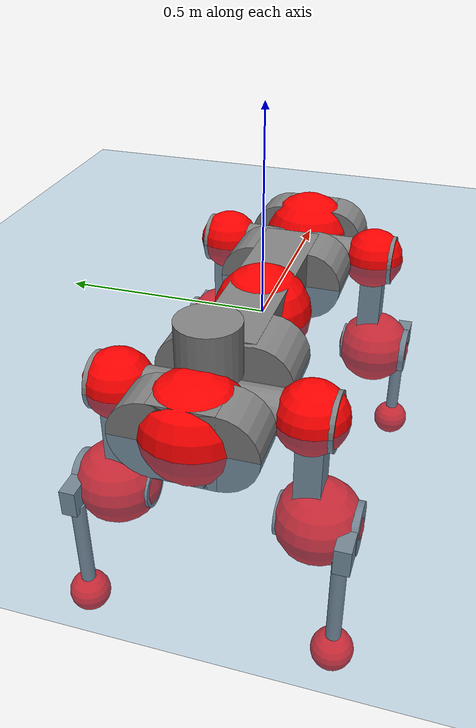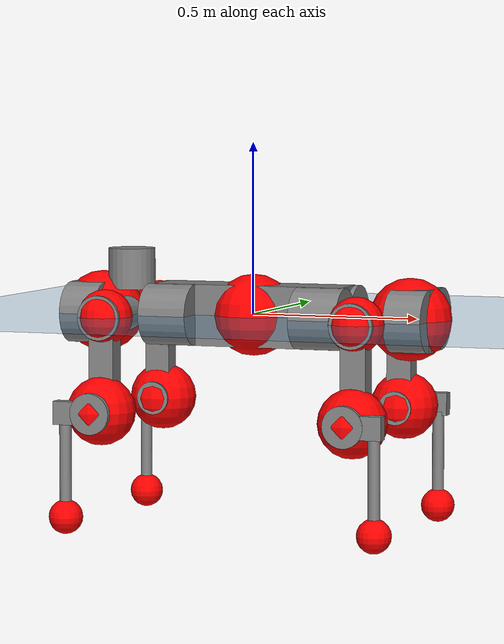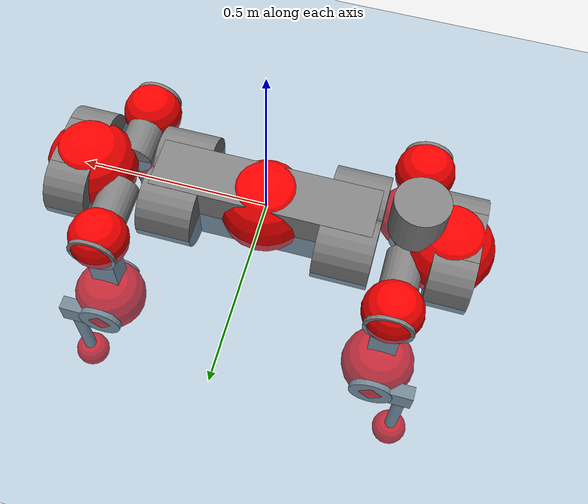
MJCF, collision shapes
<mujoco model="anymal_c">
  <compiler angle="radian" assetdir="assets" balanceinertia="true" inertiafromgeom="false"/>

  <option timestep="0.005" density="1.2" viscosity="2e-05"/>

  <size nkey="1"/>

  <visual>
    <quality shadowsize="8192"/>
    <map shadowclip="0.5"/>
  </visual>

  <default>
    <default class="/">
      <material specular="0" shininess="0.25"/>
      <geom contype="0" conaffinity="0" group="1" solref="-1000 -80"/>
      <site size="0.01 0.005 0.005" group="5"/>
      <general forcelimited="true" forcerange="-80 80" biastype="affine" gainprm="80" biasprm="0 -80 -2"/>
      <default class="anymal_c">
        <joint armature="0.01" damping="0.01" frictionloss="0.1"/>
        <default class="visual">
          <geom type="mesh" group="2"/>
          <default class="visual_zflip"/>
        </default>
        <default class="collision">
          <geom type="cylinder" group="3"/>
          <default class="foot">
            <geom size="0.03 0 0" type="sphere" condim="6" priority="1" friction="0.8 0.02 0.01" solimp="0.015 1 0.03"/>
          </default>
        </default>
      </default>
      <default class="reward_collision_sphere">
        <geom group="5" rgba="1 0 0 1"/>
      </default>
    </default>
  </default>

  <asset>
    <texture type="skybox" colorspace="auto" name="//unnamed_texture_0" builtin="gradient" rgb1="0.95 0.95 0.95" rgb2="0.95 0.95 0.95" width="100" height="600"/>
    <texture type="2d" colorspace="auto" name="texplane" builtin="checker" rgb1="0.345 0.575 0.748" rgb2="0.345 0.575 0.748" markrgb="1 1 1" width="512" height="512"/>
    <texture type="2d" colorspace="linear" name="base" file="base.png"/>
    <texture type="2d" colorspace="linear" name="top_shell" file="top_shell.png"/>
    <texture type="2d" colorspace="linear" name="bottom_shell" file="bottom_shell.png"/>
    <texture type="2d" colorspace="linear" name="remote" file="remote.png"/>
    <texture type="2d" colorspace="linear" name="hatch" file="hatch.png"/>
    <texture type="2d" colorspace="linear" name="handle" file="handle.png"/>
    <texture type="2d" colorspace="linear" name="face" file="face.png"/>
    <texture type="2d" colorspace="linear" name="battery" file="battery.png"/>
    <texture type="2d" colorspace="linear" name="lidar_cage" file="lidar_cage.png"/>
    <texture type="2d" colorspace="linear" name="depth_camera" file="depth_camera.png"/>
    <texture type="2d" colorspace="linear" name="wide_angle_camera" file="wide_angle_camera.png"/>
    <texture type="2d" colorspace="linear" name="lidar" file="lidar.png"/>
    <texture type="2d" colorspace="linear" name="drive" file="drive.png"/>
    <texture type="2d" colorspace="linear" name="hip_l" file="hip_l.png"/>
    <texture type="2d" colorspace="linear" name="shank_l" file="shank_l.png"/>
    <texture type="2d" colorspace="linear" name="foot" file="foot.png"/>
    <texture type="2d" colorspace="linear" name="thigh" file="thigh.png"/>
    <texture type="2d" colorspace="linear" name="shank_r" file="shank_r.png"/>
    <texture type="2d" colorspace="linear" name="hip_r" file="hip_r.png"/>
    <material name="MatPlane" class="/" texture="texplane" texuniform="true" texrepeat="2 2" specular="0.9" shininess="0.5"/>
    <material name="black_plastic" class="/" rgba="0.007 0.007 0.007 1"/>
    <material name="green" class="/" rgba="0.052 0.178 0.033 1"/>
    <material name="red" class="/" rgba="0.178 0.006 0.005 1"/>
    <material name="yellow" class="/" rgba="0.178 0.119 0.006 1"/>
    <material name="lwl" class="/" rgba="0.8 0.8 0.8 1"/>
    <material name="base" class="/" texture="base"/>
    <material name="top_shell" class="/" texture="top_shell"/>
    <material name="bottom_shell" class="/" texture="bottom_shell"/>
    <material name="hip_l" class="/" texture="hip_l"/>
    <material name="thigh" class="/" texture="thigh"/>
    <material name="shank_l" class="/" texture="shank_l"/>
    <material name="foot" class="/" texture="foot"/>
    <material name="hip_r" class="/" texture="hip_r"/>
    <material name="shank" class="/" texture="shank_r"/>
    <material name="hatch" class="/" texture="hatch"/>
    <material name="remote" class="/" texture="remote"/>
    <material name="handle" class="/" texture="handle"/>
    <material name="face" class="/" texture="face"/>
    <material name="depth_camera" class="/" texture="depth_camera"/>
    <material name="wide_angle_camera" class="/" texture="wide_angle_camera"/>
    <material name="battery" class="/" texture="battery"/>
    <material name="lidar_cage" class="/" texture="lidar_cage"/>
    <material name="lidar" class="/" texture="lidar"/>
    <material name="drive" class="/" texture="drive"/>
    <mesh name="base_0" class="/" file="base_0.obj"/>
    <mesh name="base_1" class="/" file="base_1.obj"/>
    <mesh name="base_2" class="/" file="base_2.obj"/>
    <mesh name="base_3" class="/" file="base_3.obj"/>
    <mesh name="base_4" class="/" file="base_4.obj"/>
    <mesh name="base_5" class="/" file="base_5.obj"/>
    <mesh name="top_shell" class="/" file="top_shell.obj"/>
    <mesh name="bottom_shell" class="/" file="bottom_shell.obj"/>
    <mesh name="remote" class="/" file="remote.obj"/>
    <mesh name="handle" class="/" file="handle.obj"/>
    <mesh name="face" class="/" file="face.obj"/>
    <mesh name="wide_angle_camera" class="/" file="wide_angle_camera.obj"/>
    <mesh name="depth_camera" class="/" file="depth_camera.obj"/>
    <mesh name="battery" class="/" file="battery.obj"/>
    <mesh name="lidar_cage" class="/" file="lidar_cage.obj"/>
    <mesh name="lidar" class="/" file="lidar.obj"/>
    <mesh name="drive" class="/" file="drive.obj"/>
    <mesh name="hip_l" class="/" file="hip_l.obj"/>
    <mesh name="thigh" class="/" file="thigh.obj"/>
    <mesh name="shank_l" class="/" file="shank_l.obj"/>
    <mesh name="foot" class="/" file="foot.obj"/>
    <mesh name="hip_r" class="/" file="hip_r.obj"/>
    <mesh name="hatch" class="/" file="hatch.obj"/>
    <mesh name="shank_r" class="/" file="shank_r.obj"/>
  </asset>

  <worldbody>
    <geom name="floor" class="/" size="100 100 0.125" type="plane" group="0" material="MatPlane"/>
    <light name="toplight_shadow" class="/" pos="0 0 5" dir="0.0990148 0.0990148 -0.990148" type="directional" ambient="0.04 0.04 0.04" diffuse="0.55 0.55 0.55" specular="0.12 0.12 0.12"/>
    <light name="toplight_fill" class="/" pos="0 0 5" dir="0.0990148 0.0990148 -0.990148" type="directional" castshadow="false" ambient="0.04 0.04 0.04" diffuse="0.3 0.3 0.3" specular="0.08 0.08 0.08"/>
    <body name="trunk" childclass="anymal_c" pos="0.00181269 0.000693816 -0.0019634" quat="0.999999 0.00087301 -0.000129449 -0.000783548">
      <inertial pos="0.000419396 0.00141489 0.0472951" quat="0.499324 0.501582 0.49702 0.502058" mass="18.5977" diaginertia="0.858077 0.525506 0.181582"/>
      <joint name="//unnamed_joint_0" type="free" armature="0" damping="0" frictionloss="0"/>
      <geom name="//unnamed_geom_1" class="visual" material="green" mesh="base_0"/>
      <geom name="//unnamed_geom_2" class="visual" material="yellow" mesh="base_1"/>
      <geom name="//unnamed_geom_3" class="visual" material="red" mesh="base_2"/>
      <geom name="//unnamed_geom_4" class="visual" material="black_plastic" mesh="base_3"/>
      <geom name="//unnamed_geom_5" class="visual" material="lwl" mesh="base_4"/>
      <geom name="//unnamed_geom_6" class="visual" material="base" mesh="base_5"/>
      <geom name="trunk_1" class="collision" size="0.289164 0.0697981 0.0897404" type="box"/>
      <geom name="trunk_2" class="collision" size="0.0897404 0.0722909" pos="0.230772 0.0677098 0" quat="0.707107 0 0.707107 0"/>
      <geom name="trunk_3" class="collision" size="0.0897404 0.0722909" pos="-0.230772 0.0677098 0" quat="0.707107 0 0.707107 0"/>
      <geom name="trunk_4" class="collision" size="0.0897404 0.0722909" pos="0.230772 -0.0677098 0" quat="0.707107 0 0.707107 0"/>
      <geom name="trunk_5" class="collision" size="0.0897404 0.0722909" pos="-0.230772 -0.0677098 0" quat="0.707107 0 0.707107 0"/>
      <geom name="//unnamed_geom_12" class="visual" material="top_shell" mesh="top_shell"/>
      <geom name="//unnamed_geom_13" class="visual" material="bottom_shell" mesh="bottom_shell"/>
      <geom name="//unnamed_geom_14" class="visual" material="remote" mesh="remote"/>
      <geom name="//unnamed_geom_15" class="visual" material="handle" mesh="handle"/>
      <geom name="//unnamed_geom_16" class="visual" pos="0.439793 0 0" quat="1 0 0 0" material="face" mesh="face"/>
      <geom name="trunk_6" class="collision" size="0.0548414 0.0697981 0.0897404" pos="0.498149 0 0" type="box"/>
      <geom name="//unnamed_geom_18" class="collision" size="0.0897404 0.0548414" pos="0.498149 0.0677098 0" quat="0.707107 0 0.707107 0"/>
      <geom name="//unnamed_geom_19" class="collision" size="0.0897404 0.0548414" pos="0.498149 -0.0677098 0" quat="0.707107 0 0.707107 0"/>
      <geom name="//unnamed_geom_20" class="visual" pos="0.489816 0 -0.0273763" quat="0.965926 0 0.258819 0" material="depth_camera" mesh="depth_camera"/>
      <geom name="//unnamed_geom_21" class="visual" pos="0.544303 0 0.0144168" material="wide_angle_camera" mesh="wide_angle_camera"/>
      <geom name="//unnamed_geom_22" class="visual_zflip" pos="-0.439793 0 0" quat="0 0 0 1" material="face" mesh="face"/>
      <geom name="trunk_7" class="collision" size="0.0548414 0.0697981 0.0897404" pos="-0.498149 0 0" quat="0 0 0 1" type="box"/>
      <geom name="//unnamed_geom_24" class="collision" size="0.0897404 0.0548414" pos="-0.498149 -0.0677098 0" quat="0 -0.707107 0 0.707107"/>
      <geom name="//unnamed_geom_25" class="collision" size="0.0897404 0.0548414" pos="-0.498149 0.0677098 0" quat="0 -0.707107 0 0.707107"/>
      <geom name="//unnamed_geom_26" class="visual" pos="-0.489816 0 -0.0273763" quat="0 -0.258819 0 0.965926" material="depth_camera" mesh="depth_camera"/>
      <geom name="//unnamed_geom_27" class="visual_zflip" pos="-0.544303 0 0.0144168" quat="0 0 0 1" material="wide_angle_camera" mesh="wide_angle_camera"/>
      <geom name="//unnamed_geom_28" class="visual" material="battery" mesh="battery"/>
      <geom name="//unnamed_geom_29" class="visual" pos="0 0.0727243 0.0287211" quat="0.683013 -0.183013 0.183013 0.683013" material="depth_camera" mesh="depth_camera"/>
      <geom name="//unnamed_geom_30" class="visual" pos="0 -0.0727243 0.0287211" quat="0.683013 0.183013 0.183013 -0.683013" material="depth_camera" mesh="depth_camera"/>
      <geom name="//unnamed_geom_31" class="visual" pos="-0.386211 0 0.0707839" quat="1 0 0 0" material="lidar_cage" mesh="lidar_cage"/>
      <geom name="trunk_8" class="collision" size="0.0697981 0.059827" pos="-0.386211 0 0.128567"/>
      <geom name="//unnamed_geom_33" class="visual" pos="-0.386211 -3.68267e-05 0.136945" quat="0.707107 0 0 -0.707107" material="lidar" mesh="lidar"/>
      <geom name="//unnamed_geom_34" class="visual" pos="0.3182 0.100596 7.3079e-11" quat="0.258819 0.965926 0 0" material="drive" mesh="drive"/>
      <geom name="//unnamed_geom_35" class="visual" pos="0.3182 -0.100596 -7.3079e-11" quat="0.258819 -0.965926 0 0" material="drive" mesh="drive"/>
      <geom name="//unnamed_geom_36" class="visual" pos="-0.3182 0.100596 -7.3079e-11" quat="0 0 0.965926 -0.258819" material="drive" mesh="drive"/>
      <geom name="//unnamed_geom_37" class="visual" pos="-0.3182 -0.100596 7.3079e-11" quat="0 0 -0.965926 -0.258819" material="drive" mesh="drive"/>
      <geom name="//unnamed_geom_38" class="visual" pos="0.123078 0 0.0703024" quat="1 0 0 0" material="hatch" mesh="hatch"/>
      <geom name="//unnamed_geom_39" class="reward_collision_sphere" size="0.119654"/>
      <geom name="//unnamed_geom_40" class="reward_collision_sphere" size="0.119654" pos="0.477459 0 0"/>
      <geom name="//unnamed_geom_41" class="reward_collision_sphere" size="0.119654" pos="-0.477459 0 0"/>
      <site name="imu" pos="0.268233 0.0198903 0.0570217" size="0.00997116"/>
      <camera name="track" pos="0 -1.93457 0" quat="0.707107 0.707107 0 0" mode="trackcom"/>
      <camera name="ego_camera" pos="0.477459 0 -0.0385218" quat="-0.5 -0.5 0.5 0.5"/>
      <body name="LF_HIP" pos="0.318652 0.101428 0.000709589" quat="0.259022 0.965871 0.000655154 -0.000557783">
        <inertial pos="0.0598436 -0.0172597 -0.00670756" quat="-0.129364 0.706313 -0.135485 0.682664" mass="2.67294" diaginertia="0.00800199 0.00425532 0.0027315"/>
        <joint name="LF_HAA" pos="0 0 0" axis="0.999939 0.00814214 0.00739613" range="-0.678923 0.510925" armature="0.00994008" damping="0.0210851" frictionloss="0.0983171"/>
        <geom name="//unnamed_geom_42" class="visual" pos="0 4.29891e-06 -7.06092e-07" quat="0.258819 -0.965926 0 0" material="hip_l" mesh="hip_l"/>
        <geom name="//unnamed_geom_43" class="visual" pos="0.0635551 -0.0757748 -0.0437173" quat="0.183013 -0.683013 0.683013 0.183013" material="drive" mesh="drive"/>
        <geom name="//unnamed_geom_44" class="collision" size="0.0498558 0.0697981" pos="0.0635551 -0.0115685 -0.00664983" quat="-0.353553 -0.612372 0.612372 -0.353553"/>
        <body name="LF_THIGH" pos="0.0661699 -0.0708491 -0.0375611" quat="0.183202 -0.682804 0.682814 0.184337">
          <inertial pos="0.03577 -0.00259333 -0.239028" quat="0.993123 -0.00487449 -0.081159 0.0842424" mass="2.95795" diaginertia="0.0402586 0.0241921 0.00341162"/>
          <joint name="LF_HFE" pos="0 0 0" axis="0.999996 0.00261005 0.00129834" range="-3.11416 3.14456" armature="0.00931207" damping="0.014493" frictionloss="0.0951798"/>
          <geom name="//unnamed_geom_45" class="visual" pos="0.001865 2.9388e-06 0" quat="0.707107 0 0 -0.707107" material="thigh" mesh="thigh"/>
          <geom name="//unnamed_geom_46" class="collision" size="0.0648125 0.0398846" pos="0.0424408 0 0" quat="0.5 0.5 -0.5 -0.5"/>
          <geom name="//unnamed_geom_47" class="collision" size="0.0373919 0.0299135 0.140906" pos="0.0318306 0 -0.136092" quat="0.707107 0 0 -0.707107" type="box"/>
          <geom name="//unnamed_geom_48" class="visual" pos="0.10642 0 -0.274468" quat="1 0 0 0" material="drive" mesh="drive"/>
          <geom name="//unnamed_geom_49" class="collision" size="0.0498558 0.0697981" pos="0.0321489 0 -0.274468" quat="0.707107 0 0.707107 0"/>
          <geom name="//unnamed_geom_50" class="reward_collision_sphere" size="0.0797693" pos="0.0265255 0 0"/>
          <body name="LF_SHANK" pos="0.105681 -0.00278882 -0.274467" quat="0.999999 0.000763133 0.00038978 0.00112673">
            <inertial pos="0.00303176 -0.0595999 -0.0749547" quat="0.993257 -0.111981 0.00183923 -0.0299524" mass="0.582294" diaginertia="0.0135051 0.00825243 0.000951399"/>
            <joint name="LF_KFE" pos="0 0 0" axis="0.999979 -0.00620465 0.00204011" stiffness="0.00212046" range="-3.18859 3.13096" armature="0.0109843" damping="0" frictionloss="0.110945"/>
            <geom name="//unnamed_geom_51" class="visual" pos="0.000608134 0.0032426 0" quat="0.707107 0 0 -0.707107" material="shank_l" mesh="shank_l"/>
            <geom name="LF_kfe_act" class="collision" size="0.059827 0.0199423" pos="0.0212204 0 0" quat="0.5 0.5 -0.5 -0.5"/>
            <geom name="//unnamed_geom_53" class="collision" size="0.0573332 0.0336527 0.0189452" pos="0.0212204 -0.0556178 0" quat="0.5 0.5 -0.5 -0.5" type="box"/>
            <geom name="//unnamed_geom_54" class="visual" pos="0.0138462 -0.0840275 -0.325481" quat="0.382683 0 0 -0.92388" material="foot" mesh="foot"/>
            <geom name="LF_calf" class="collision" size="0.0174495 0.140845" pos="0.0138463 -0.0850725 -0.16274" quat="0.707107 0 0 -0.707107"/>
            <geom name="LF_foot" class="foot" size="0.0304283" pos="0.0138463 -0.0850725 -0.303812" quat="0.707107 0 0 -0.707107"/>
            <geom name="//unnamed_geom_57" class="reward_collision_sphere" size="0.0997116" pos="-0.053051 0 0"/>
            <geom name="//unnamed_geom_58" class="reward_collision_sphere" size="0.0498558" pos="0.0138463 -0.0850725 -0.303812"/>
            <site name="LF_foot" class="foot" pos="0.0138463 -0.0850725 -0.303812" quat="0.707107 0 0 -0.707107" size="0.00997116"/>
          </body>
        </body>
      </body>
      <body name="RF_HIP" pos="0.31767 -0.10039 -0.00213523" quat="0.259188 -0.965826 -0.00148429 -0.000234161">
        <inertial pos="0.0625362 0.0126023 -0.00789398" quat="0.131915 0.670133 0.125587 0.719547" mass="2.73137" diaginertia="0.00736808 0.00403431 0.0025531"/>
        <joint name="RF_HAA" pos="0 0 0" axis="0.999956 0.0063056 0.00692488" range="-0.478063 0.721477" armature="0.0101506" damping="0.00628567" frictionloss="0.0862388"/>
        <geom name="//unnamed_geom_59" class="visual" pos="0 -4.29887e-06 -7.0609e-07" quat="0.258819 0.965926 0 0" material="hip_r" mesh="hip_r"/>
        <geom name="//unnamed_geom_60" class="visual" pos="0.0635551 0.0757748 -0.0437173" quat="0.183013 0.683013 0.683013 -0.183013" material="drive" mesh="drive"/>
        <geom name="//unnamed_geom_61" class="collision" size="0.0498558 0.0697981" pos="0.0635551 0.0115685 -0.00664983" quat="-0.353553 0.612372 0.612372 0.353553"/>
        <body name="RF_THIGH" pos="0.0638501 0.0681046 -0.0397594" quat="0.18287 0.682871 0.683038 -0.183589">
          <inertial pos="0.0352565 -0.00286794 -0.235357" quat="0.992796 0.00660124 -0.0853994 0.0837837" mass="3.06385" diaginertia="0.0400927 0.0244454 0.00349277"/>
          <joint name="RF_HFE" pos="0 0 0" axis="0.999997 -0.000811507 -0.00243132" range="-3.12062 3.19554" armature="0.00988958" damping="0.013064" frictionloss="0.108442"/>
          <geom name="//unnamed_geom_62" class="visual" pos="0.001865 2.9388e-06 0" quat="0.707107 0 0 -0.707107" material="thigh" mesh="thigh"/>
          <geom name="//unnamed_geom_63" class="collision" size="0.0648125 0.0398846" pos="0.0424408 0 0" quat="0.5 0.5 0.5 0.5"/>
          <geom name="//unnamed_geom_64" class="collision" size="0.0373919 0.0299135 0.140906" pos="0.0318306 0 -0.136092" quat="0.707107 0 0 0.707107" type="box"/>
          <geom name="//unnamed_geom_65" class="visual" pos="0.10642 0 -0.274468" quat="1 0 0 0" material="drive" mesh="drive"/>
          <geom name="//unnamed_geom_66" class="collision" size="0.0498558 0.0697981" pos="0.0321489 0 -0.274468" quat="0.707107 0 0.707107 0"/>
          <geom name="//unnamed_geom_67" class="reward_collision_sphere" size="0.0797693" pos="0.0265255 0 0"/>
          <body name="RF_SHANK" pos="0.105604 -0.00263191 -0.275494" quat="1 9.12562e-06 9.91141e-06 1.12156e-05">
            <inertial pos="0.0056878 0.0587288 -0.0769607" quat="0.99415 0.106541 0.00223304 0.0176134" mass="0.586396" diaginertia="0.0137295 0.00783073 0.00089698"/>
            <joint name="RF_KFE" pos="0 0 0" axis="0.999973 -0.0010404 -0.00733569" range="-3.1591 3.19262" armature="0.00960329" damping="0.0236741" frictionloss="0.0925905"/>
            <geom name="//unnamed_geom_68" class="visual" pos="0.000608131 -0.0032426 0" quat="0.707107 0 0 0.707107" material="shank" mesh="shank_r"/>
            <geom name="RF_kfe_act" class="collision" size="0.059827 0.0199423" pos="0.0212204 0 0" quat="0.5 0.5 0.5 0.5"/>
            <geom name="//unnamed_geom_70" class="collision" size="0.0573332 0.0336527 0.0189452" pos="0.0212204 0.0556178 0" quat="0.5 0.5 0.5 0.5" type="box"/>
            <geom name="//unnamed_geom_71" class="visual" pos="0.0138465 0.0840275 -0.325481" quat="0.382683 0 0 0.92388" material="foot" mesh="foot"/>
            <geom name="RF_calf" class="collision" size="0.0174495 0.140845" pos="0.0138463 0.0850725 -0.16274" quat="0.707107 0 0 0.707107"/>
            <geom name="RF_foot" class="foot" size="0.0256822" pos="0.0138463 0.0850725 -0.303812" quat="0.707107 0 0 0.707107"/>
            <geom name="//unnamed_geom_74" class="reward_collision_sphere" size="0.0997116" pos="-0.053051 0 0"/>
            <geom name="//unnamed_geom_75" class="reward_collision_sphere" size="0.0498558" pos="0.0138463 0.0850725 -0.303812"/>
            <site name="RF_foot" class="foot" pos="0.0138463 0.0850725 -0.303812" quat="0.707107 0 0 0.707107" size="0.00997116"/>
          </body>
        </body>
      </body>
      <body name="LH_HIP" pos="-0.318223 0.100448 -0.00172879" quat="0.00010186 9.82856e-05 0.96591 -0.258878">
        <inertial pos="0.0615186 0.0167877 -0.0108985" quat="0.14319 0.679218 0.129076 0.708165" mass="2.8157" diaginertia="0.00773511 0.00412335 0.0027905"/>
        <joint name="LH_HAA" pos="0 0 0" axis="0.999999 0.000283064 0.000992588" stiffness="0.00531349" range="-0.472908 0.673702" armature="0.00868865" damping="0.00810463" frictionloss="0.112472"/>
        <geom name="//unnamed_geom_76" class="visual" pos="0 -4.29887e-06 -7.0609e-07" quat="-0.258819 -0.965926 0 0" material="hip_r" mesh="hip_r"/>
        <geom name="//unnamed_geom_77" class="visual" pos="0.0635551 0.0757748 -0.0437173" quat="0.183013 0.683013 0.683013 -0.183013" material="drive" mesh="drive"/>
        <geom name="//unnamed_geom_78" class="collision" size="0.0498558 0.0697981" pos="0.0635551 0.0115685 -0.00664983" quat="-0.353553 0.612372 0.612372 0.353553"/>
        <body name="LH_THIGH" pos="0.0635993 0.0673711 -0.0386515" quat="0.182742 0.683074 0.68308 -0.182803">
          <inertial pos="0.0329168 0.000206724 -0.23727" quat="0.992434 -0.00774785 -0.0799423 0.0928651" mass="3.12958" diaginertia="0.0406227 0.0250483 0.00358796"/>
          <joint name="LH_HFE" pos="0 0 0" axis="0.999939 0.0102055 0.00427929" stiffness="0.00972482" range="-3.15 3.12435" armature="0.0113091" damping="0" frictionloss="0.100279"/>
          <geom name="//unnamed_geom_79" class="visual" pos="0.001865 2.9388e-06 0" quat="0.707107 0 0 -0.707107" material="thigh" mesh="thigh"/>
          <geom name="//unnamed_geom_80" class="collision" size="0.0648125 0.0398846" pos="0.0424408 0 0" quat="0.5 0.5 -0.5 -0.5"/>
          <geom name="//unnamed_geom_81" class="collision" size="0.0373919 0.0299135 0.140906" pos="0.0318306 0 -0.136092" quat="0.707107 0 0 -0.707107" type="box"/>
          <geom name="//unnamed_geom_82" class="visual" pos="0.10642 0 -0.274468" quat="1 0 0 0" material="drive" mesh="drive"/>
          <geom name="//unnamed_geom_83" class="collision" size="0.0498558 0.0697981" pos="0.0321489 0 -0.274468" quat="0.707107 0 0.707107 0"/>
          <geom name="//unnamed_geom_84" class="reward_collision_sphere" size="0.0797693" pos="0.0265255 0 0"/>
          <body name="LH_SHANK" pos="0.10605 -0.000171155 -0.276534" quat="1 -0.000420176 -0.000103119 0.000141175">
            <inertial pos="0.00485669 0.0611366 -0.0783244" quat="0.993438 0.111507 0.00929387 0.0236735" mass="0.588298" diaginertia="0.0133912 0.00785324 0.000913595"/>
            <joint name="LH_KFE" pos="0 0 0" axis="0.99994 -0.0106869 -0.00233922" range="-3.13793 3.17528" armature="0.0111044" damping="0" frictionloss="0.110237"/>
            <geom name="//unnamed_geom_85" class="visual" pos="0.000608131 -0.0032426 0" quat="-0.707107 0 0 -0.707107" material="shank" mesh="shank_r"/>
            <geom name="LH_kfe_act" class="collision" size="0.059827 0.0199423" pos="0.0212204 0 0" quat="0.5 0.5 -0.5 -0.5"/>
            <geom name="//unnamed_geom_87" class="collision" size="0.0573332 0.0336527 0.0189452" pos="0.0212204 0.0556178 0" quat="0.5 0.5 -0.5 -0.5" type="box"/>
            <geom name="//unnamed_geom_88" class="visual" pos="0.0138465 0.0840275 -0.325481" quat="-0.382683 0 0 -0.92388" material="foot" mesh="foot"/>
            <geom name="LH_calf" class="collision" size="0.0174495 0.140845" pos="0.0138463 0.0850725 -0.16274" quat="0.707107 0 0 -0.707107"/>
            <geom name="LH_foot" class="foot" size="0.0302779" pos="0.0138463 0.0850725 -0.303812" quat="0.707107 0 0 -0.707107"/>
            <geom name="//unnamed_geom_91" class="reward_collision_sphere" size="0.0997116" pos="-0.053051 0 0"/>
            <geom name="//unnamed_geom_92" class="reward_collision_sphere" size="0.0498558" pos="0.0138463 0.0850725 -0.303812"/>
            <site name="LH_foot" class="foot" pos="0.0138463 0.0850725 -0.303812" quat="0.707107 0 0 -0.707107" size="0.00997116"/>
          </body>
        </body>
      </body>
      <body name="RH_HIP" pos="-0.317475 -0.103024 -0.000739895" quat="0.000164697 0.000961221 -0.966046 -0.258369">
        <inertial pos="0.0621982 -0.01209 -0.0102844" quat="-0.126904 0.717115 -0.142814 0.670258" mass="2.75474" diaginertia="0.0078038 0.00414824 0.00274787"/>
        <joint name="RH_HAA" pos="0 0 0" axis="0.999947 0.00212751 -0.010081" stiffness="0.00620998" range="-0.705711 0.473402" armature="0.00890405" damping="0.0153473" frictionloss="0.095916"/>
        <geom name="//unnamed_geom_93" class="visual" pos="0 4.29891e-06 -7.06092e-07" quat="-0.258819 0.965926 0 0" material="hip_l" mesh="hip_l"/>
        <geom name="//unnamed_geom_94" class="visual" pos="0.0635551 -0.0757748 -0.0437173" quat="-0.183013 0.683013 -0.683013 -0.183013" material="drive" mesh="drive"/>
        <geom name="//unnamed_geom_95" class="collision" size="0.0498558 0.0697981" pos="0.0635551 -0.0115685 -0.00664983" quat="0.353553 0.612372 -0.612372 0.353553"/>
        <body name="RH_THIGH" pos="0.0635527 -0.0723614 -0.0426592" quat="-0.182964 0.682995 -0.683034 -0.183048">
          <inertial pos="0.033976 0.000179599 -0.236466" quat="0.993099 -0.0047751 -0.0791453 0.0864169" mass="2.93747" diaginertia="0.0410827 0.0261317 0.00345871"/>
          <joint name="RH_HFE" pos="0 0 0" axis="0.999999 -0.00108874 0.000380462" stiffness="0.00348628" range="-3.14129 3.19751" armature="0.0104597" damping="0.00863987" frictionloss="0.0961018"/>
          <geom name="//unnamed_geom_96" class="visual" pos="0.001865 2.9388e-06 0" quat="0.707107 0 0 -0.707107" material="thigh" mesh="thigh"/>
          <geom name="//unnamed_geom_97" class="collision" size="0.0648125 0.0398846" pos="0.0424408 0 0" quat="0.5 0.5 0.5 0.5"/>
          <geom name="//unnamed_geom_98" class="collision" size="0.0373919 0.0299135 0.140906" pos="0.0318306 0 -0.136092" quat="0.707107 0 0 0.707107" type="box"/>
          <geom name="//unnamed_geom_99" class="visual" pos="0.10642 0 -0.274468" quat="1 0 0 0" material="drive" mesh="drive"/>
          <geom name="//unnamed_geom_100" class="collision" size="0.0498558 0.0697981" pos="0.0321489 0 -0.274468" quat="0.707107 0 0.707107 0"/>
          <geom name="//unnamed_geom_101" class="reward_collision_sphere" size="0.0797693" pos="0.0265255 0 0"/>
          <body name="RH_SHANK" pos="0.107198 -0.00109868 -0.271191" quat="1 -1.26921e-05 3.0163e-05 -8.44248e-05">
            <inertial pos="0.0030969 -0.0602512 -0.0779704" quat="0.994238 -0.104783 -0.00292595 -0.0224156" mass="0.590495" diaginertia="0.0139183 0.00787724 0.000962336"/>
            <joint name="RH_KFE" pos="0 0 0" axis="0.999904 0.00632433 -0.0123392" range="-3.12991 3.12517" armature="0.00988127" damping="0.0215042" frictionloss="0.099325"/>
            <geom name="//unnamed_geom_102" class="visual" pos="0.000608134 0.0032426 0" quat="0.707107 0 0 -0.707107" material="shank_l" mesh="shank_l"/>
            <geom name="RH_kfe_act" class="collision" size="0.059827 0.0199423" pos="0.0212204 0 0" quat="0.5 0.5 0.5 0.5"/>
            <geom name="//unnamed_geom_104" class="collision" size="0.0573332 0.0336527 0.0189452" pos="0.0212204 -0.0556178 0" quat="0.5 0.5 0.5 0.5" type="box"/>
            <geom name="//unnamed_geom_105" class="visual" pos="0.0138462 -0.0840275 -0.325481" quat="0.382683 0 0 -0.92388" material="foot" mesh="foot"/>
            <geom name="RH_calf" class="collision" size="0.0174495 0.140845" pos="0.0138463 -0.0850725 -0.16274" quat="0.707107 0 0 0.707107"/>
            <geom name="RH_foot" class="foot" size="0.0275712" pos="0.0138463 -0.0850725 -0.303812" quat="0.707107 0 0 0.707107"/>
            <geom name="//unnamed_geom_108" class="reward_collision_sphere" size="0.0997116" pos="-0.053051 0 0"/>
            <geom name="//unnamed_geom_109" class="reward_collision_sphere" size="0.0498558" pos="0.0138463 -0.0850725 -0.303812"/>
            <site name="RH_foot" class="foot" pos="0.0138463 -0.0850725 -0.303812" quat="0.707107 0 0 0.707107" size="0.00997116"/>
          </body>
        </body>
      </body>
    </body>
  </worldbody>

  <contact>
    <pair class="/" geom1="floor" geom2="LF_foot" name="//unnamed_contact_0"/>
    <pair class="/" geom1="floor" geom2="RF_foot" name="//unnamed_contact_1"/>
    <pair class="/" geom1="floor" geom2="LH_foot" name="//unnamed_contact_2"/>
    <pair class="/" geom1="floor" geom2="RH_foot" name="//unnamed_contact_3"/>
  </contact>

  <actuator>
    <general name="LF_HAA" class="/" joint="LF_HAA" forcerange="-80.3271 80.3271" gainprm="83.5229" biasprm="0 -83.5229 -1.96932"/>
    <general name="LF_HFE" class="/" joint="LF_HFE" forcerange="-72.9521 72.9521" gainprm="83.5229" biasprm="0 -83.5229 -1.96932"/>
    <general name="LF_KFE" class="/" joint="LF_KFE" forcerange="-82.4728 82.4728" gainprm="83.5229" biasprm="0 -83.5229 -1.96932"/>
    <general name="RF_HAA" class="/" joint="RF_HAA" forcerange="-79.3757 79.3757" gainprm="83.5229" biasprm="0 -83.5229 -1.96932"/>
    <general name="RF_HFE" class="/" joint="RF_HFE" forcerange="-89.2283 89.2283" gainprm="83.5229" biasprm="0 -83.5229 -1.96932"/>
    <general name="RF_KFE" class="/" joint="RF_KFE" forcerange="-80.1111 80.1111" gainprm="83.5229" biasprm="0 -83.5229 -1.96932"/>
    <general name="LH_HAA" class="/" joint="LH_HAA" forcerange="-86.5587 86.5587" gainprm="83.5229" biasprm="0 -83.5229 -1.96932"/>
    <general name="LH_HFE" class="/" joint="LH_HFE" forcerange="-74.706 74.706" gainprm="83.5229" biasprm="0 -83.5229 -1.96932"/>
    <general name="LH_KFE" class="/" joint="LH_KFE" forcerange="-73.4757 73.4757" gainprm="83.5229" biasprm="0 -83.5229 -1.96932"/>
    <general name="RH_HAA" class="/" joint="RH_HAA" forcerange="-72.4871 72.4871" gainprm="83.5229" biasprm="0 -83.5229 -1.96932"/>
    <general name="RH_HFE" class="/" joint="RH_HFE" forcerange="-87.1241 87.1241" gainprm="83.5229" biasprm="0 -83.5229 -1.96932"/>
    <general name="RH_KFE" class="/" joint="RH_KFE" forcerange="-76.9626 76.9626" gainprm="83.5229" biasprm="0 -83.5229 -1.96932"/>
  </actuator>

  <sensor>
    <gyro site="imu" name="imu_angular_velocity"/>
    <velocimeter site="imu" name="imu_linear_velocity"/>
    <framelinvel objtype="site" objname="LF_foot" name="LF_foot_global_linear_velocity"/>
    <framelinvel objtype="site" objname="RF_foot" name="RF_foot_global_linear_velocity"/>
    <framelinvel objtype="site" objname="LH_foot" name="LH_foot_global_linear_velocity"/>
    <framelinvel objtype="site" objname="RH_foot" name="RH_foot_global_linear_velocity"/>
  </sensor>

  <keyframe>
    <key name="home" qpos="0 0 0.55 1 0 0 0 0 0.4 -0.8 0 -0.4 0.8 0 -0.4 0.8 0 0.4 -0.8"/>
  </keyframe>
</mujoco>
